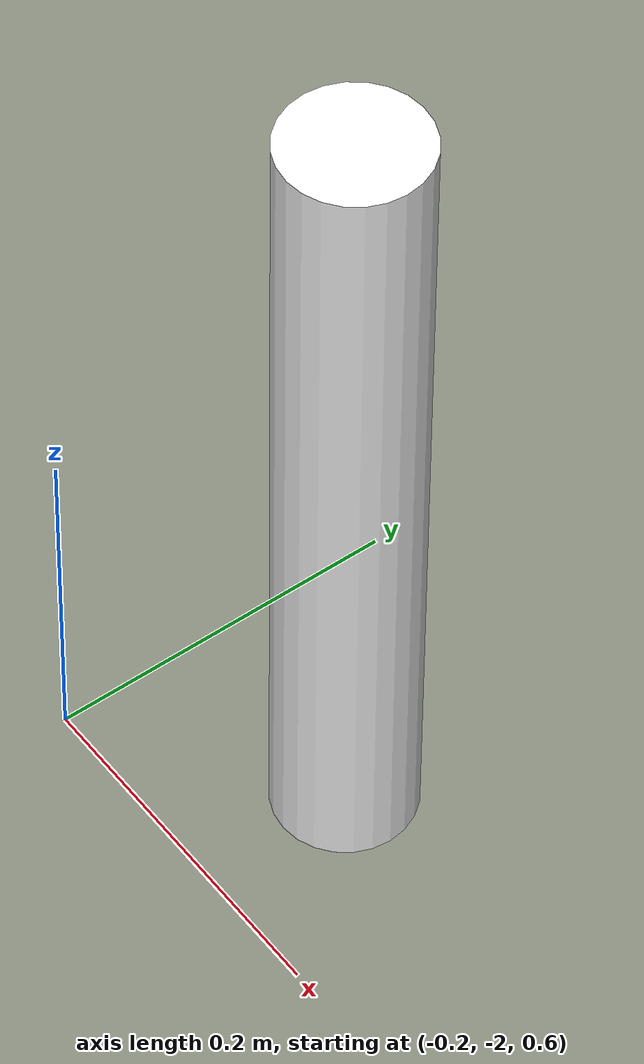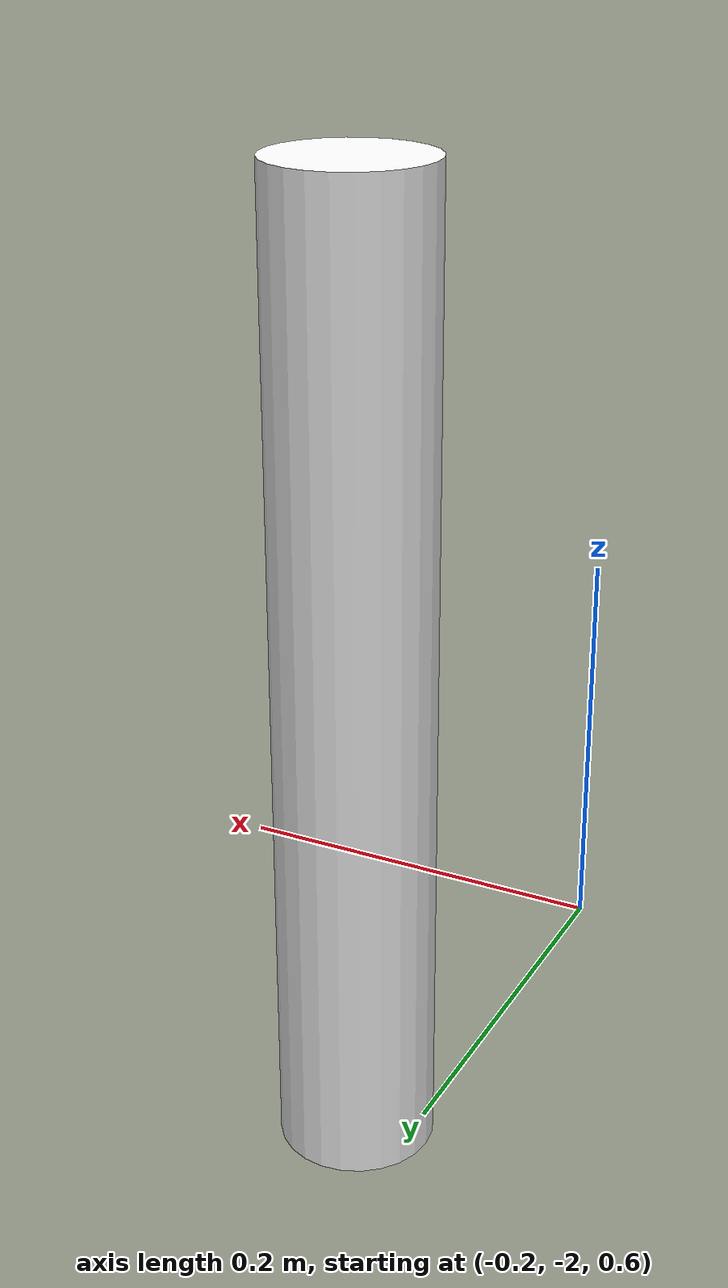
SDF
<?xml version="1.0" ?>

<sdf version="1.6">
    <model name='kinect_pillar'>
        <static>1</static>
        <pose>-0.126765 -1.874496 0.76814 0 0 0</pose>
        <link name='link'>
        <inertial>
            <mass>1</mass>
            <inertia>
            <ixx>0.145833</ixx>
            <ixy>0</ixy>
            <ixz>0</ixz>
            <iyy>0.145833</iyy>
            <iyz>0</iyz>
            <izz>0.125</izz>
            </inertia>
        </inertial>
        <collision name='collision'>
            <geometry>
            <cylinder>
                <radius>0.04</radius>
                <length>0.5</length>
            </cylinder>
            </geometry>
            <max_contacts>10</max_contacts>
            <surface>
            <contact>
                <ode/>
            </contact>
            <bounce/>
            <friction>
                <torsional>
                <ode/>
                </torsional>
                <ode/>
            </friction>
            </surface>
        </collision>
        <visual name='visual'>
            <geometry>
            <cylinder>
                <radius>0.04</radius>
                <length>0.5</length>
            </cylinder>
            </geometry>
            <material>
            <script>
                <uri>file://media/materials/scripts/gazebo.material</uri>
                <name>Gazebo/Metal</name>
            </script>
            <ambient>1 1 1 1</ambient>
            </material>
        </visual>
        <self_collide>0</self_collide>
        <kinematic>0</kinematic>
        </link>
    </model>

</sdf>
